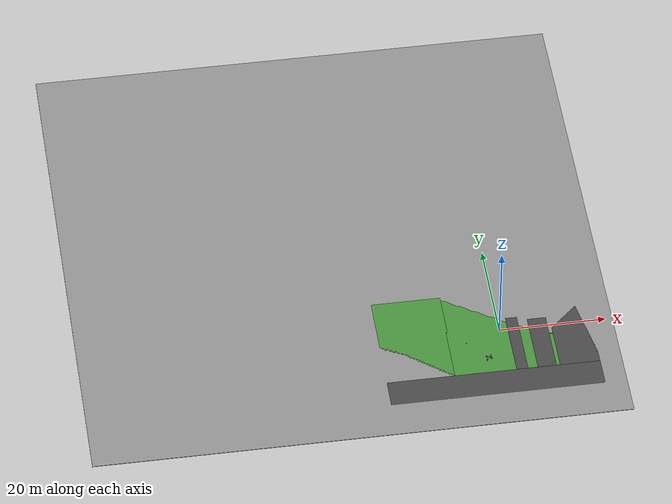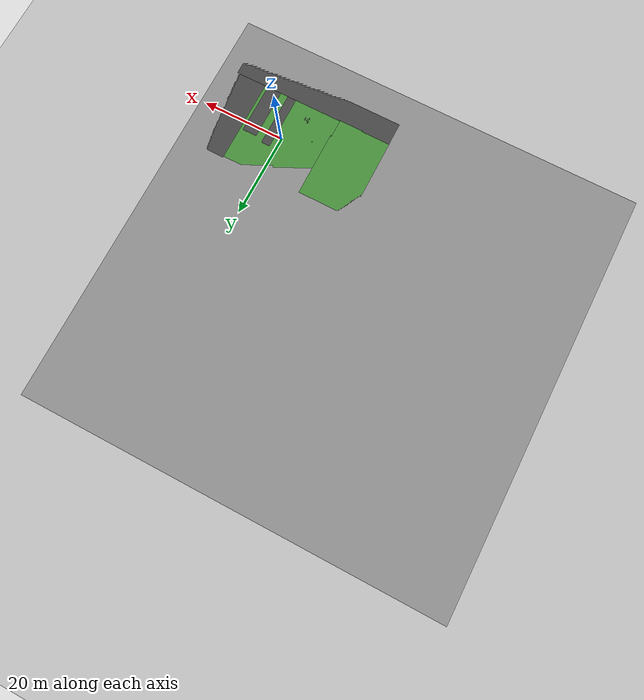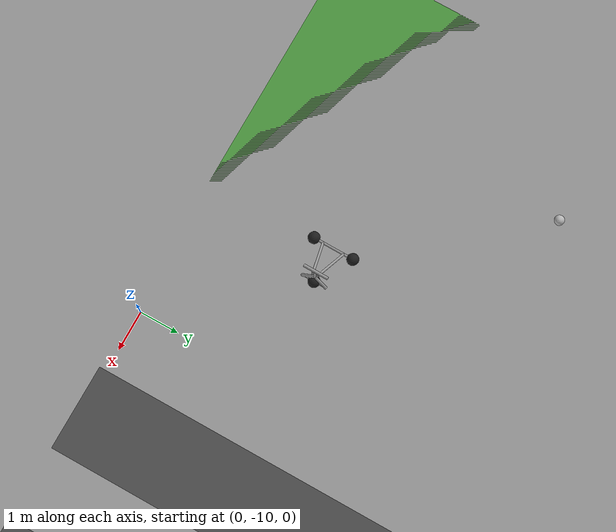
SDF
<sdf version="1.6">
 <world name="default">
  <light name="sun" type="directional">
   <pose>0 0 10 0 -0 0</pose>
   <diffuse>0.8 0.8 0.8 1</diffuse>
   <specular>0.1 0.1 0.1 1</specular>
   <attenuation>
    <range>1000</range>
    <constant>0.9</constant>
    <linear>0.01</linear>
    <quadratic>0.001</quadratic>
   </attenuation>
   <direction>-0.5 0.5 -1</direction>
  </light>
  <model name="ground_plane">
   <static>1</static>
   <link name="link">
    <collision name="collision">
     <geometry><plane><normal>0 0 1</normal><size>100 100</size></plane></geometry>
     <surface><friction><ode><mu>100</mu><mu2>50</mu2></ode></friction></surface>
    </collision>
    <visual name="visual">
     <cast_shadows>0</cast_shadows>
     <geometry><plane><normal>0 0 1</normal><size>100 100</size></plane></geometry>
     <material>
      <script><uri>file://media/materials/scripts/gazebo.material</uri><name>Gazebo/Grey</name></script>
     </material>
    </visual>
   </link>
  </model>
  <gravity>0 0 -9.8</gravity>
  <magnetic_field>6e-06 2.3e-05 -4.2e-05</magnetic_field>
  <atmosphere type="adiabatic"/>
  <physics name="default_physics" default="0" type="ode">
   <max_step_size>0.001</max_step_size>
   <real_time_factor>1</real_time_factor>
   <real_time_update_rate>1000</real_time_update_rate>
  </physics>
  <scene><ambient>0.4 0.4 0.4 1</ambient><background>0.7 0.7 0.7 1</background><shadows>1</shadows></scene>
  <spherical_coordinates>
   <surface_model>EARTH_WGS84</surface_model>
   <latitude_deg>0</latitude_deg>
   <longitude_deg>0</longitude_deg>
   <elevation>0</elevation>
   <heading_deg>0</heading_deg>
  </spherical_coordinates>
  <model name="grass_plane">
   <static>1</static>
   <link name="link">
    <collision name="collision"><geometry><box><size>20 20 0.1</size></box></geometry></collision>
    <visual name="visual">
     <cast_shadows>0</cast_shadows>
     <geometry><box><size>20 20 0.1</size></box></geometry>
     <material>
      <script>
       <uri>model://grass_plane/materials/scripts</uri>
       <uri>model://grass_plane/materials/textures</uri>
       <name>vrc/grass</name>
      </script>
     </material>
    </visual>
   </link>
   <pose>0.021186 -0.185182 0 0 -0 0</pose>
  </model>
  <model name="asphalt_plane_0">
   <static>1</static>
   <link name="link">
    <collision name="collision"><geometry><box><size>7.49808 20.3146 0.1</size></box></geometry></collision>
    <visual name="visual">
     <cast_shadows>0</cast_shadows>
     <geometry><box><size>7.49808 20.3146 0.1</size></box></geometry>
     <material>
      <script>
       <uri>model://asphalt_plane/materials/scripts</uri>
       <uri>model://asphalt_plane/materials/textures</uri>
       <name>vrc/asphalt</name>
      </script>
     </material>
    </visual>
   </link>
   <pose>13.4657 -0.043815 0 0 -0 0</pose>
  </model>
  <model name="grass_plane_0">
   <static>1</static>
   <link name="link">
    <collision name="collision"><geometry><box><size>13.0296 20 0.1</size></box></geometry></collision>
    <visual name="visual">
     <cast_shadows>0</cast_shadows>
     <geometry><box><size>13.0296 20 0.1</size></box></geometry>
     <material>
      <script>
       <uri>model://grass_plane/materials/scripts</uri>
       <uri>model://grass_plane/materials/textures</uri>
       <name>vrc/grass</name>
      </script>
     </material>
    </visual>
   </link>
   <pose>-16.196 -0.352816 0 0 -0 0</pose>
  </model>
  <model name="ground_plane_0">
   <static>1</static>
   <link name="link">
    <collision name="collision">
     <geometry><plane><normal>0 0 1</normal><size>100 100</size></plane></geometry>
     <surface><friction><ode><mu>100</mu><mu2>50</mu2></ode></friction></surface>
    </collision>
    <visual name="visual">
     <cast_shadows>0</cast_shadows>
     <geometry><plane><normal>0 0 1</normal><size>100 100</size></plane></geometry>
     <material>
      <script><uri>file://media/materials/scripts/gazebo.material</uri><name>Gazebo/Grey</name></script>
     </material>
    </visual>
   </link>
   <pose>-28.6988 27.0596 0 0 -0 0</pose>
  </model>
  <model name="asphalt_plane">
   <static>1</static>
   <link name="link">
    <collision name="collision"><geometry><box><size>39.8942 5.49918 0.1</size></box></geometry></collision>
    <visual name="visual">
     <cast_shadows>0</cast_shadows>
     <geometry><box><size>39.8942 5.49918 0.1</size></box></geometry>
     <material>
      <script>
       <uri>model://asphalt_plane/materials/scripts</uri>
       <uri>model://asphalt_plane/materials/textures</uri>
       <name>vrc/asphalt</name>
      </script>
     </material>
    </visual>
   </link>
   <pose>-2.73146 -12.9364 0 0 -0 0</pose>
  </model>
  <model name="frc2016_ball">
   <pose>-6.6538 -2.57739 0.176984 0 -0 0</pose>
   <link name="link">
    <inertial>
     <mass>0.213</mass>
     <inertia>
      <ixx>0.00322667</ixx>
      <ixy>0</ixy>
      <ixz>0</ixz>
      <iyy>0.00322667</iyy>
      <iyz>0</iyz>
      <izz>0.00322667</izz>
     </inertia>
    </inertial>
    <visual name="visual"><geometry><sphere><radius>0.127</radius></sphere></geometry></visual>
    <collision name="collision">
     <geometry><sphere><radius>0.127</radius></sphere></geometry>
     <surface>
      <bounce><restitution_coefficient>0.15937</restitution_coefficient><threshold>0</threshold></bounce>
      <contact><ode><max_vel>100</max_vel><min_depth>0.001</min_depth></ode></contact>
     </surface>
    </collision>
   </link>
  </model>
  <model name="trisphere_cycle">
   <link name="frame">
    <pose>-0.408559 0 0.385023 0 -0.522021 0</pose>
    <inertial>
     <mass>10</mass>
     <inertia><ixx>0.228</ixx><iyy>0.743521</iyy><izz>0.965521</izz><ixy>0</ixy><ixz>0</ixz><iyz>0</iyz></inertia>
    </inertial>
    <collision name="axle_collision">
     <pose>-0.471335 0 0 1.5708 -0 0</pose>
     <geometry><cylinder><length>1.03923</length><radius>0.03</radius></cylinder></geometry>
    </collision>
    <visual name="axle_visual">
     <pose>-0.471335 0 0 1.5708 -0 0</pose>
     <geometry><cylinder><length>1.03923</length><radius>0.03</radius></cylinder></geometry>
     <material>
      <script><uri>file://media/materials/scripts/gazebo.material</uri><name>Gazebo/Grey</name></script>
     </material>
    </visual>
    <collision name="frame_left_collision">
     <pose>0 0.171552 0 2.986 1.57079 2.76675</pose>
     <geometry><cylinder><length>1.00317</length><radius>0.03</radius></cylinder></geometry>
    </collision>
    <visual name="frame_left_visual">
     <pose>0 0.171552 0 2.986 1.57079 2.76675</pose>
     <geometry><cylinder><length>1.00317</length><radius>0.03</radius></cylinder></geometry>
     <material>
      <script><uri>file://media/materials/scripts/gazebo.material</uri><name>Gazebo/Grey</name></script>
     </material>
    </visual>
    <collision name="frame_right_collision">
     <pose>0 -0.171552 0 -2.986 1.57079 -2.76675</pose>
     <geometry><cylinder><length>1.00317</length><radius>0.03</radius></cylinder></geometry>
    </collision>
    <visual name="frame_right_visual">
     <pose>0 -0.171552 0 -2.986 1.57079 -2.76675</pose>
     <geometry><cylinder><length>1.00317</length><radius>0.03</radius></cylinder></geometry>
     <material>
      <script><uri>file://media/materials/scripts/gazebo.material</uri><name>Gazebo/Grey</name></script>
     </material>
    </visual>
   </link>
   <link name="fork">
    <pose>0.041441 0 0.385023 0 -0.174533 0</pose>
    <inertial>
     <mass>3</mass>
     <inertia>
      <ixx>0.158203</ixx>
      <iyy>0.0583594</iyy>
      <izz>0.102656</izz>
      <ixy>0</ixy>
      <ixz>0</ixz>
      <iyz>0</iyz>
     </inertia>
    </inertial>
    <collision name="handlebars_collision">
     <pose>0 0 0.397748 1.5708 -0 0</pose>
     <geometry><cylinder><length>0.636396</length><radius>0.0375</radius></cylinder></geometry>
    </collision>
    <visual name="handlebars_visual">
     <pose>0 0 0.397748 1.5708 -0 0</pose>
     <geometry><cylinder><length>0.636396</length><radius>0.0375</radius></cylinder></geometry>
     <material>
      <script><uri>file://media/materials/scripts/gazebo.material</uri><name>Gazebo/Grey</name></script>
     </material>
    </visual>
    <collision name="headtube_collision">
     <pose>0 0 0.238649 0 -0 0</pose>
     <geometry><cylinder><length>0.318198</length><radius>0.0375</radius></cylinder></geometry>
    </collision>
    <visual name="headtube_visual">
     <pose>0 0 0.238649 0 -0 0</pose>
     <geometry><cylinder><length>0.318198</length><radius>0.0375</radius></cylinder></geometry>
     <material>
      <script><uri>file://media/materials/scripts/gazebo.material</uri><name>Gazebo/Grey</name></script>
     </material>
    </visual>
    <collision name="spindle_collision">
     <pose>0 0 -0.238649 1.5708 -0 0</pose>
     <geometry><cylinder><length>0.636396</length><radius>0.015</radius></cylinder></geometry>
    </collision>
    <visual name="spindle_visual">
     <pose>0 0 -0.238649 1.5708 -0 0</pose>
     <geometry><cylinder><length>0.636396</length><radius>0.015</radius></cylinder></geometry>
     <material>
      <script><uri>file://media/materials/scripts/gazebo.material</uri><name>Gazebo/Grey</name></script>
     </material>
    </visual>
    <collision name="fork_left_collision">
     <pose>0 0.159099 -0.07955 0.785398 -0 0</pose>
     <geometry><cylinder><length>0.45</length><radius>0.0375</radius></cylinder></geometry>
    </collision>
    <visual name="fork_left_visual">
     <pose>0 0.159099 -0.07955 0.785398 -0 0</pose>
     <geometry><cylinder><length>0.45</length><radius>0.0375</radius></cylinder></geometry>
     <material>
      <script><uri>file://media/materials/scripts/gazebo.material</uri><name>Gazebo/Grey</name></script>
     </material>
    </visual>
    <collision name="fork_right_collision">
     <pose>0 -0.159099 -0.07955 -0.785398 0 0</pose>
     <geometry><cylinder><length>0.45</length><radius>0.0375</radius></cylinder></geometry>
    </collision>
    <visual name="fork_right_visual">
     <pose>0 -0.159099 -0.07955 -0.785398 0 0</pose>
     <geometry><cylinder><length>0.45</length><radius>0.0375</radius></cylinder></geometry>
     <material>
      <script><uri>file://media/materials/scripts/gazebo.material</uri><name>Gazebo/Grey</name></script>
     </material>
    </visual>
   </link>
   <link name="wheel_front">
    <pose>0.082882 0 0.15 0 -0 0</pose>
    <inertial>
     <mass>0.5</mass>
     <inertia><ixx>0.0045</ixx><iyy>0.0045</iyy><izz>0.0045</izz><ixy>0</ixy><ixz>0</ixz><iyz>0</iyz></inertia>
    </inertial>
    <collision name="collision">
     <geometry><sphere><radius>0.15</radius></sphere></geometry>
     <surface><contact><ode><kp>1e+08</kp><kd>1</kd><min_depth>0.0005</min_depth></ode></contact></surface>
    </collision>
    <visual name="visual">
     <geometry><sphere><radius>0.15</radius></sphere></geometry>
     <material>
      <script><uri>file://media/materials/scripts/gazebo.material</uri><name>Gazebo/Black</name></script>
     </material>
    </visual>
   </link>
   <joint name="wheel_front_steer" type="revolute">
    <parent>frame</parent>
    <child>fork</child>
    <axis>
     <xyz>0 0 1</xyz>
     <limit><lower>-0.959931</lower><upper>0.959931</upper></limit>
     <use_parent_model_frame>0</use_parent_model_frame>
     <dynamics><spring_reference>0</spring_reference><spring_stiffness>0</spring_stiffness></dynamics>
    </axis>
   </joint>
   <joint name="wheel_front_spin" type="revolute">
    <parent>fork</parent>
    <child>wheel_front</child>
    <axis>
     <xyz>0 1 0</xyz>
     <use_parent_model_frame>0</use_parent_model_frame>
     <limit><lower>-1e+16</lower><upper>1e+16</upper></limit>
     <dynamics><spring_reference>0</spring_reference><spring_stiffness>0</spring_stiffness></dynamics>
    </axis>
   </joint>
   <link name="wheel_rear_left">
    <pose>-0.817118 0.519615 0.15 0 -0 0</pose>
    <inertial>
     <mass>0.5</mass>
     <inertia><ixx>0.0045</ixx><iyy>0.0045</iyy><izz>0.0045</izz><ixy>0</ixy><ixz>0</ixz><iyz>0</iyz></inertia>
    </inertial>
    <collision name="collision">
     <geometry><sphere><radius>0.15</radius></sphere></geometry>
     <surface><contact><ode><kp>1e+08</kp><kd>1</kd><min_depth>0.0005</min_depth></ode></contact></surface>
    </collision>
    <visual name="visual">
     <geometry><sphere><radius>0.15</radius></sphere></geometry>
     <material>
      <script><uri>file://media/materials/scripts/gazebo.material</uri><name>Gazebo/Black</name></script>
     </material>
    </visual>
   </link>
   <joint name="wheel_rear_left_spin" type="revolute">
    <parent>frame</parent>
    <child>wheel_rear_left</child>
    <axis>
     <xyz>0 1 0</xyz>
     <use_parent_model_frame>0</use_parent_model_frame>
     <limit><lower>-1e+16</lower><upper>1e+16</upper></limit>
     <dynamics><spring_reference>0</spring_reference><spring_stiffness>0</spring_stiffness></dynamics>
    </axis>
   </joint>
   <link name="wheel_rear_right">
    <pose>-0.817118 -0.519615 0.15 0 -0 0</pose>
    <inertial>
     <mass>0.5</mass>
     <inertia><ixx>0.0045</ixx><iyy>0.0045</iyy><izz>0.0045</izz><ixy>0</ixy><ixz>0</ixz><iyz>0</iyz></inertia>
    </inertial>
    <collision name="collision">
     <geometry><sphere><radius>0.15</radius></sphere></geometry>
     <surface><contact><ode><kp>1e+08</kp><kd>1</kd><min_depth>0.0005</min_depth></ode></contact></surface>
    </collision>
    <visual name="visual">
     <geometry><sphere><radius>0.15</radius></sphere></geometry>
     <material>
      <script><uri>file://media/materials/scripts/gazebo.material</uri><name>Gazebo/Black</name></script>
     </material>
    </visual>
   </link>
   <joint name="wheel_rear_right_spin" type="revolute">
    <parent>frame</parent>
    <child>wheel_rear_right</child>
    <axis>
     <xyz>0 1 0</xyz>
     <use_parent_model_frame>0</use_parent_model_frame>
     <limit><lower>-1e+16</lower><upper>1e+16</upper></limit>
     <dynamics><spring_reference>0</spring_reference><spring_stiffness>0</spring_stiffness></dynamics>
    </axis>
   </joint>
   <pose>-2.65947 -6.84374 0.049499 0 1e-06 -0.009212</pose>
  </model>
  <model name="asphalt_plane_3">
   <static>1</static>
   <link name="link">
    <collision name="collision"><geometry><box><size>2.14664 12.9395 0.121751</size></box></geometry></collision>
    <visual name="visual">
     <cast_shadows>0</cast_shadows>
     <geometry><box><size>2.14664 12.9395 0.121751</size></box></geometry>
     <material>
      <script>
       <uri>model://asphalt_plane/materials/scripts</uri>
       <uri>model://asphalt_plane/materials/textures</uri>
       <name>vrc/asphalt</name>
      </script>
     </material>
    </visual>
   </link>
   <pose>2.63894 -3.69985 0 0 -0 0</pose>
  </model>
  <model name="asphalt_plane_4">
   <static>1</static>
   <link name="link">
    <collision name="collision"><geometry><box><size>3.4976 12.1405 0.11832</size></box></geometry></collision>
    <visual name="visual">
     <cast_shadows>0</cast_shadows>
     <geometry><box><size>3.4976 12.1405 0.11832</size></box></geometry>
     <material>
      <script>
       <uri>model://asphalt_plane/materials/scripts</uri>
       <uri>model://asphalt_plane/materials/textures</uri>
       <name>vrc/asphalt</name>
      </script>
     </material>
    </visual>
   </link>
   <pose>7.29257 -4.11629 0 0 -0 0</pose>
  </model>
 </world>
</sdf>
